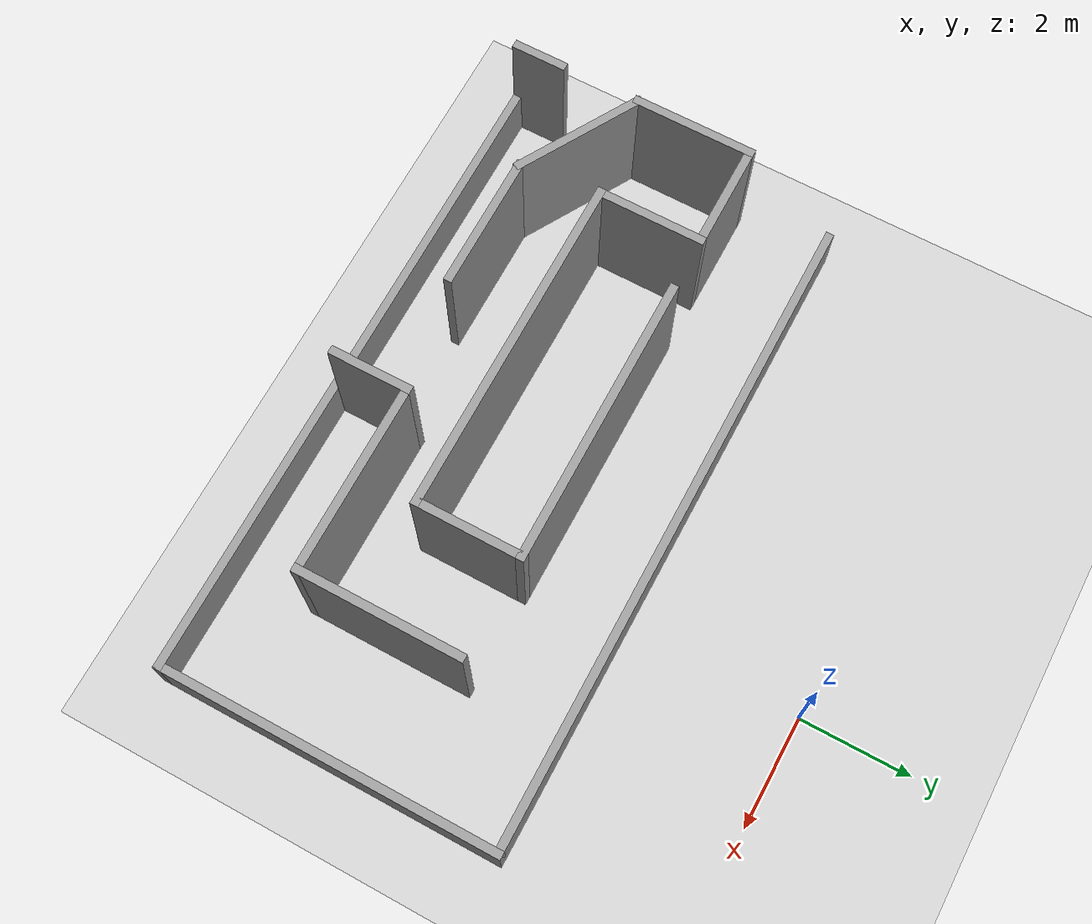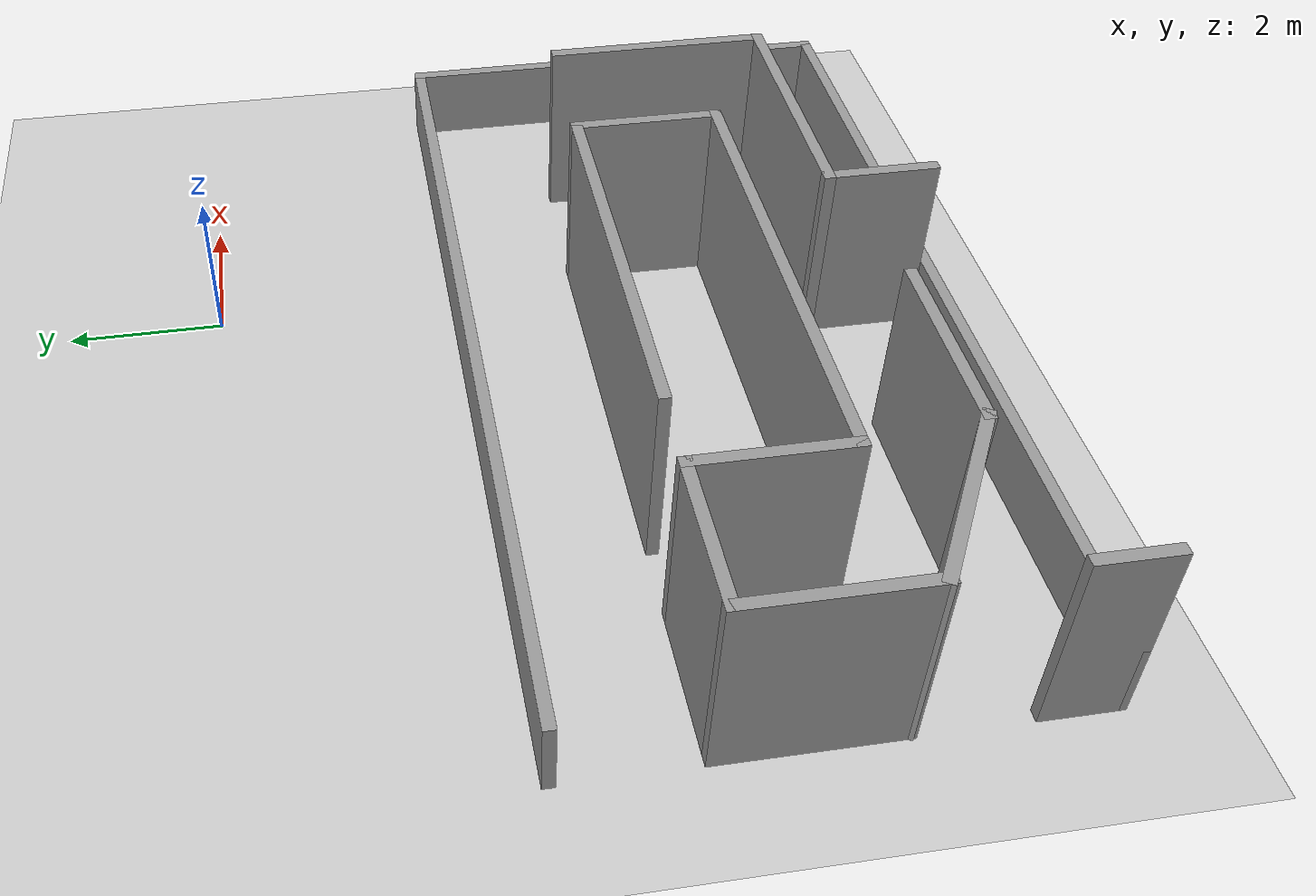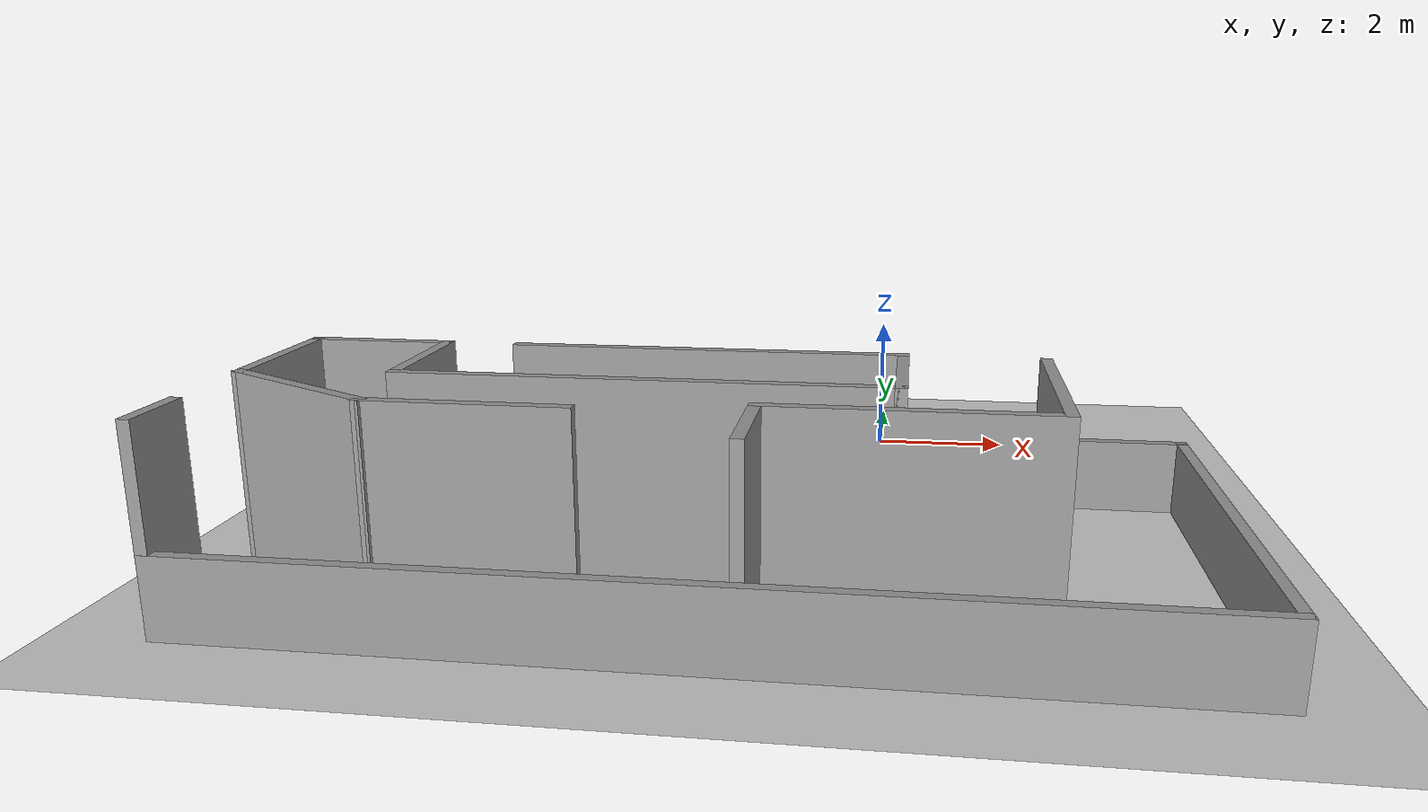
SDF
<sdf version="1.7">
 <world name="default">
  <light name="sun" type="directional">
   <pose>0 0 10 0 -0 0</pose>
   <diffuse>0.8 0.8 0.8 1</diffuse>
   <specular>0.2 0.2 0.2 1</specular>
   <attenuation>
    <range>1000</range>
    <constant>0.9</constant>
    <linear>0.01</linear>
    <quadratic>0.001</quadratic>
   </attenuation>
   <direction>-0.5 0.1 -0.9</direction>
   <spot><inner_angle>0</inner_angle><outer_angle>0</outer_angle><falloff>0</falloff></spot>
  </light>
  <model name="ground_plane">
   <static>1</static>
   <link name="link">
    <collision name="collision">
     <geometry><plane><normal>0 0 1</normal><size>100 100</size></plane></geometry>
     <surface>
      <contact><collide_bitmask>65535</collide_bitmask></contact>
      <friction><ode><mu>100</mu><mu2>50</mu2></ode></friction>
     </surface>
    </collision>
    <visual name="visual">
     <cast_shadows>0</cast_shadows>
     <geometry><plane><normal>0 0 1</normal><size>100 100</size></plane></geometry>
     <material>
      <script><uri>file://media/materials/scripts/gazebo.material</uri><name>Gazebo/Grey</name></script>
     </material>
    </visual>
   </link>
  </model>
  <gravity>0 0 -9.8</gravity>
  <magnetic_field>6e-06 2.3e-05 -4.2e-05</magnetic_field>
  <atmosphere type="adiabatic"/>
  <physics type="ode">
   <max_step_size>0.001</max_step_size>
   <real_time_factor>1</real_time_factor>
   <real_time_update_rate>1000</real_time_update_rate>
  </physics>
  <scene><ambient>0.4 0.4 0.4 1</ambient><background>0.7 0.7 0.7 1</background><shadows>1</shadows></scene>
  <audio><device>default</device></audio>
  <spherical_coordinates>
   <surface_model>EARTH_WGS84</surface_model>
   <latitude_deg>0</latitude_deg>
   <longitude_deg>0</longitude_deg>
   <elevation>0</elevation>
   <heading_deg>0</heading_deg>
  </spherical_coordinates>
  <model name="labyrinth">
   <pose>-1.67389 -4.67 0 0 -0 0</pose>
   <link name="Wall_11">
    <collision name="Wall_11_Collision">
     <geometry><box><size>2 0.15 2.5</size></box></geometry>
     <pose>0 0 1.25 0 -0 0</pose>
    </collision>
    <visual name="Wall_11_Visual">
     <pose>0 0 1.25 0 -0 0</pose>
     <geometry><box><size>2 0.15 2.5</size></box></geometry>
     <material>
      <script><uri>file://media/materials/scripts/gazebo.material</uri><name>Gazebo/Grey</name></script>
      <ambient>1 1 1 1</ambient>
     </material>
     <meta><layer>0</layer></meta>
    </visual>
    <pose>-4.98644 -0.189932 0 0 -0 0</pose>
   </link>
   <link name="Wall_12">
    <collision name="Wall_12_Collision">
     <geometry><box><size>2 0.15 2.5</size></box></geometry>
     <pose>0 0 1.25 0 -0 0</pose>
    </collision>
    <visual name="Wall_12_Visual">
     <pose>0 0 1.25 0 -0 0</pose>
     <geometry><box><size>2 0.15 2.5</size></box></geometry>
     <material>
      <script><uri>file://media/materials/scripts/gazebo.material</uri><name>Gazebo/Grey</name></script>
      <ambient>1 1 1 1</ambient>
     </material>
     <meta><layer>0</layer></meta>
    </visual>
    <pose>-4.06144 -1.11493 0 0 -0 -1.5708</pose>
   </link>
   <link name="Wall_13">
    <collision name="Wall_13_Collision">
     <geometry><box><size>6.25 0.15 2.5</size></box></geometry>
     <pose>0 0 1.25 0 -0 0</pose>
    </collision>
    <visual name="Wall_13_Visual">
     <pose>0 0 1.25 0 -0 0</pose>
     <geometry><box><size>6.25 0.15 2.5</size></box></geometry>
     <material>
      <script><uri>file://media/materials/scripts/gazebo.material</uri><name>Gazebo/Grey</name></script>
      <ambient>1 1 1 1</ambient>
     </material>
     <meta><layer>0</layer></meta>
    </visual>
    <pose>-1.01144 -2.03993 0 0 -0 0</pose>
   </link>
   <link name="Wall_14">
    <collision name="Wall_14_Collision">
     <geometry><box><size>2 0.15 2.5</size></box></geometry>
     <pose>0 0 1.25 0 -0 0</pose>
    </collision>
    <visual name="Wall_14_Visual">
     <pose>0 0 1.25 0 -0 0</pose>
     <geometry><box><size>2 0.15 2.5</size></box></geometry>
     <material>
      <script><uri>file://media/materials/scripts/gazebo.material</uri><name>Gazebo/Grey</name></script>
      <ambient>1 1 1 1</ambient>
     </material>
     <meta><layer>0</layer></meta>
    </visual>
    <pose>2.03856 -1.11493 0 0 -0 1.5708</pose>
   </link>
   <link name="Wall_15">
    <collision name="Wall_15_Collision">
     <geometry><box><size>5.25 0.15 2.5</size></box></geometry>
     <pose>0 0 1.25 0 -0 0</pose>
    </collision>
    <visual name="Wall_15_Visual">
     <pose>0 0 1.25 0 -0 0</pose>
     <geometry><box><size>5.25 0.15 2.5</size></box></geometry>
     <material>
      <script><uri>file://media/materials/scripts/gazebo.material</uri><name>Gazebo/Grey</name></script>
      <ambient>1 1 1 1</ambient>
     </material>
     <meta><layer>0</layer></meta>
    </visual>
    <pose>-0.511437 -0.189932 0 0 -0 3.14159</pose>
   </link>
   <link name="Wall_18">
    <collision name="Wall_18_Collision">
     <geometry><box><size>3 0.15 2.5</size></box></geometry>
     <pose>0 0 1.25 0 -0 0</pose>
    </collision>
    <visual name="Wall_18_Visual">
     <pose>0 0 1.25 0 -0 0</pose>
     <geometry><box><size>3 0.15 2.5</size></box></geometry>
     <material>
      <script><uri>file://media/materials/scripts/gazebo.material</uri><name>Gazebo/Grey</name></script>
      <ambient>1 1 1 1</ambient>
     </material>
     <meta><layer>0</layer></meta>
    </visual>
    <pose>3.83053 -1.66859 0 0 -0 -1.5708</pose>
   </link>
   <link name="Wall_19">
    <collision name="Wall_19_Collision">
     <geometry><box><size>3.5 0.15 2.5</size></box></geometry>
     <pose>0 0 1.25 0 -0 0</pose>
    </collision>
    <visual name="Wall_19_Visual">
     <pose>0 0 1.25 0 -0 0</pose>
     <geometry><box><size>3.5 0.15 2.5</size></box></geometry>
     <material>
      <script><uri>file://media/materials/scripts/gazebo.material</uri><name>Gazebo/Grey</name></script>
      <ambient>1 1 1 1</ambient>
     </material>
     <meta><layer>0</layer></meta>
    </visual>
    <pose>2.15553 -3.0936 0 0 -0 3.14159</pose>
   </link>
   <link name="Wall_20">
    <collision name="Wall_20_Collision">
     <geometry><box><size>1.5 0.15 2.5</size></box></geometry>
     <pose>0 0 1.25 0 -0 0</pose>
    </collision>
    <visual name="Wall_20_Visual">
     <pose>0 0 1.25 0 -0 0</pose>
     <geometry><box><size>1.5 0.15 2.5</size></box></geometry>
     <material>
      <script><uri>file://media/materials/scripts/gazebo.material</uri><name>Gazebo/Grey</name></script>
      <ambient>1 1 1 1</ambient>
     </material>
     <meta><layer>0</layer></meta>
    </visual>
    <pose>0.480528 -3.76859 0 0 -0 -1.5708</pose>
   </link>
   <link name="Wall_22">
    <collision name="Wall_22_Collision">
     <geometry><box><size>2.5 0.15 2.5</size></box></geometry>
     <pose>0 0 1.25 0 -0 0</pose>
    </collision>
    <visual name="Wall_22_Visual">
     <pose>0 0 1.25 0 -0 0</pose>
     <geometry><box><size>2.5 0.15 2.5</size></box></geometry>
     <material>
      <script><uri>file://media/materials/scripts/gazebo.material</uri><name>Gazebo/Grey</name></script>
      <ambient>1 1 1 1</ambient>
     </material>
     <meta><layer>0</layer></meta>
    </visual>
    <pose>-4.89386 -2.87743 0 0 -0 -0.523599</pose>
   </link>
   <link name="Wall_23">
    <collision name="Wall_23_Collision">
     <geometry><box><size>2.5 0.15 2.5</size></box></geometry>
     <pose>0 0 1.25 0 -0 0</pose>
    </collision>
    <visual name="Wall_23_Visual">
     <pose>0 0 1.25 0 -0 0</pose>
     <geometry><box><size>2.5 0.15 2.5</size></box></geometry>
     <material>
      <script><uri>file://media/materials/scripts/gazebo.material</uri><name>Gazebo/Grey</name></script>
      <ambient>1 1 1 1</ambient>
     </material>
     <meta><layer>0</layer></meta>
    </visual>
    <pose>-2.70128 -3.46493 0 0 -0 0</pose>
   </link>
   <link name="Wall_3">
    <collision name="Wall_3_Collision">
     <geometry><box><size>12 0.15 1</size></box></geometry>
     <pose>0 0 0.5 0 -0 0</pose>
    </collision>
    <visual name="Wall_3_Visual">
     <pose>0 0 0.5 0 -0 0</pose>
     <geometry><box><size>12 0.15 1</size></box></geometry>
     <material>
      <script><uri>file://media/materials/scripts/gazebo.material</uri><name>Gazebo/Grey</name></script>
      <ambient>1 1 1 1</ambient>
     </material>
     <meta><layer>0</layer></meta>
    </visual>
    <pose>0.013889 1.505 0 0 -0 0</pose>
   </link>
   <link name="Wall_4">
    <collision name="Wall_4_Collision">
     <geometry><box><size>6.25 0.15 1</size></box></geometry>
     <pose>0 0 0.5 0 -0 0</pose>
    </collision>
    <visual name="Wall_4_Visual">
     <pose>0 0 0.5 0 -0 0</pose>
     <geometry><box><size>6.25 0.15 1</size></box></geometry>
     <material>
      <script><uri>file://media/materials/scripts/gazebo.material</uri><name>Gazebo/Grey</name></script>
      <ambient>1 1 1 1</ambient>
     </material>
     <meta><layer>0</layer></meta>
    </visual>
    <pose>5.93889 -1.545 0 0 -0 -1.5708</pose>
   </link>
   <link name="Wall_5">
    <collision name="Wall_5_Collision">
     <geometry><box><size>12 0.15 1</size></box></geometry>
     <pose>0 0 0.5 0 -0 0</pose>
    </collision>
    <visual name="Wall_5_Visual">
     <pose>0 0 0.5 0 -0 0</pose>
     <geometry><box><size>12 0.15 1</size></box></geometry>
     <material>
      <script><uri>file://media/materials/scripts/gazebo.material</uri><name>Gazebo/Grey</name></script>
      <ambient>1 1 1 1</ambient>
     </material>
     <meta><layer>0</layer></meta>
    </visual>
    <pose>0.013889 -4.595 0 0 -0 3.14159</pose>
   </link>
   <link name="Wall_6">
    <collision name="Wall_6_Collision">
     <geometry><box><size>1 0.15 2.5</size></box></geometry>
     <pose>0 0 1.25 0 -0 0</pose>
    </collision>
    <visual name="Wall_6_Visual">
     <pose>0 0 1.25 0 -0 0</pose>
     <geometry><box><size>1 0.15 2.5</size></box></geometry>
     <material>
      <script><uri>file://media/materials/scripts/gazebo.material</uri><name>Gazebo/Grey</name></script>
      <ambient>1 1 1 1</ambient>
     </material>
     <meta><layer>0</layer></meta>
    </visual>
    <pose>-5.91127 -4.16979 0 0 -0 1.57118</pose>
   </link>
   <link name="Wall_9">
    <collision name="Wall_9_Collision">
     <geometry><box><size>2.25 0.15 2.5</size></box></geometry>
     <pose>0 0 1.25 0 -0 0</pose>
    </collision>
    <visual name="Wall_9_Visual">
     <pose>0 0 1.25 0 -0 0</pose>
     <geometry><box><size>2.25 0.15 2.5</size></box></geometry>
     <material>
      <script><uri>file://media/materials/scripts/gazebo.material</uri><name>Gazebo/Grey</name></script>
      <ambient>1 1 1 1</ambient>
     </material>
     <meta><layer>0</layer></meta>
    </visual>
    <pose>-5.91144 -1.23993 0 0 -0 1.5708</pose>
   </link>
   <static>1</static>
  </model>
 </world>
</sdf>
